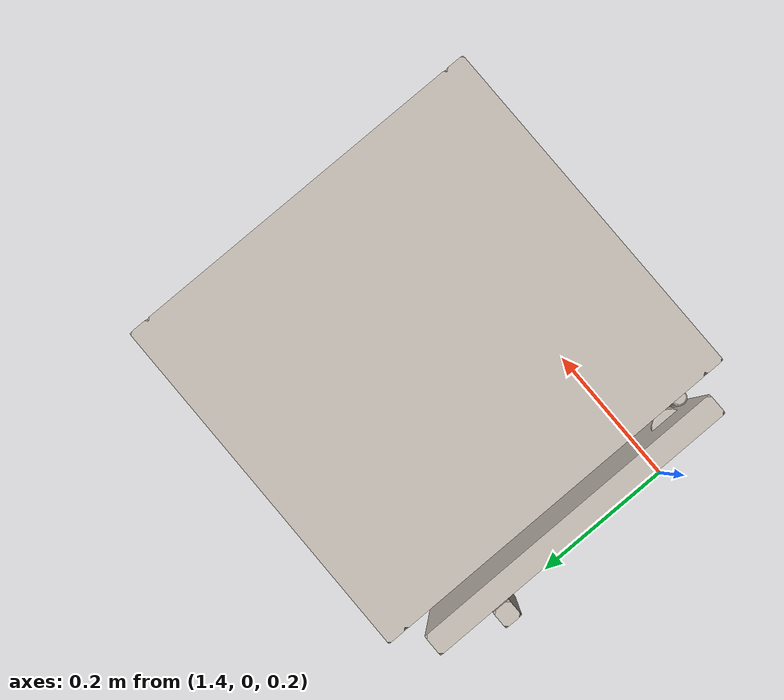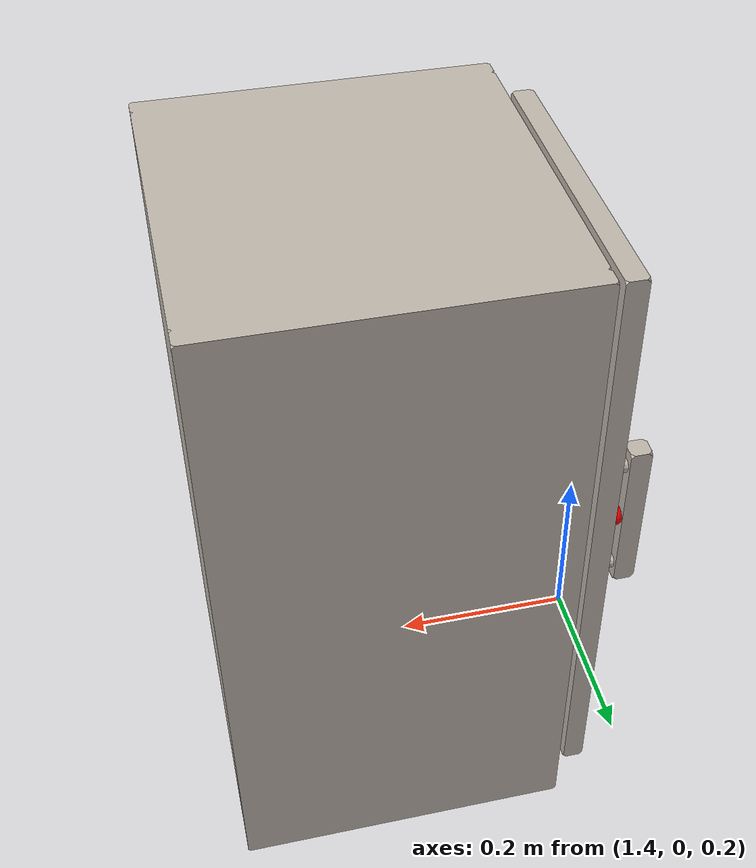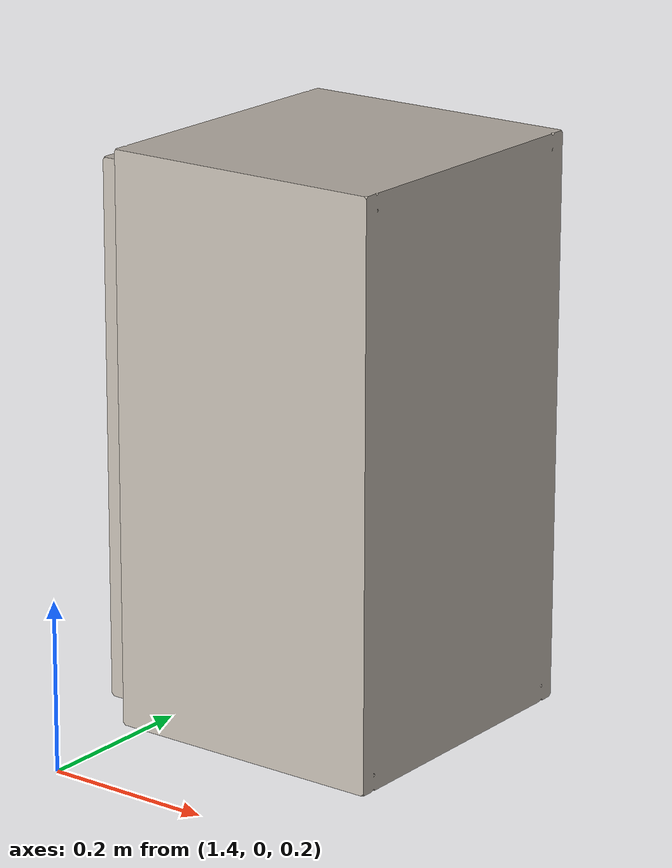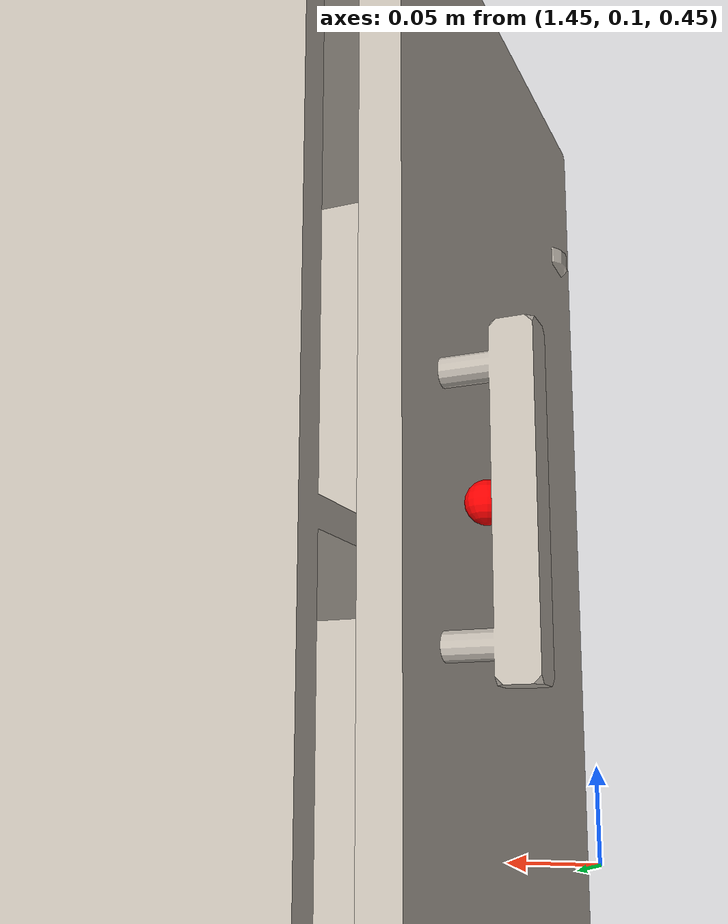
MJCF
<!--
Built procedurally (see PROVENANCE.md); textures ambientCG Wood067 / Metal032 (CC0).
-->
<?xml version="1.0"?>
<mujoco model="door">
  <compiler angle="radian" meshdir="assets" texturedir="assets"/>

  <asset>
    <texture name="walnut_tex" type="2d" file="walnut.png"/>
    <material name="walnut" texture="walnut_tex" specular="0.15" shininess="0.3" reflectance="0.0"/>
    <texture name="steel_tex" type="2d" file="steel.png"/>
    <material name="steel" texture="steel_tex" specular="0.7" shininess="0.6" reflectance="0.15"/>
    <mesh name="door_case" file="door_case.obj"/>
    <mesh name="door_leaf" file="door_leaf.obj"/>
    <mesh name="door_pull" file="door_pull.obj"/>
  </asset>

  <worldbody>
    <body name="door_base" pos="1.5 0 0.61" mocap="true">
      <geom name="door_case_visual" type="mesh" mesh="door_case" material="walnut" contype="0" conaffinity="0" group="2" mass="0"/>
      <geom name="door_body" type="box" pos="0.3300 0.1500 0.0000" size="0.0050 0.1550 0.3000" group="3" rgba="0.5 0.5 0.5 0.25" condim="3" friction="1 0.03 0.003" contype="2" conaffinity="1" solref="0.01 1"/>
      <geom name="door_case_hinge" type="box" pos="0.1750 -0.0140 0.0000" size="0.1600 0.0090 0.3180" group="3" rgba="0.5 0.5 0.5 0.25" condim="3" friction="1 0.03 0.003" contype="2" conaffinity="1" solref="0.01 1"/>
      <geom name="door_case_free" type="box" pos="0.1750 0.3140 0.0000" size="0.1600 0.0090 0.3180" group="3" rgba="0.5 0.5 0.5 0.25" condim="3" friction="1 0.03 0.003" contype="2" conaffinity="1" solref="0.01 1"/>
      <geom name="door_case_top" type="box" pos="0.1750 0.1500 0.3090" size="0.1600 0.1550 0.0090" group="3" rgba="0.5 0.5 0.5 0.25" condim="3" friction="1 0.03 0.003" contype="2" conaffinity="1" solref="0.01 1"/>
      <geom name="door_case_bottom" type="box" pos="0.1750 0.1500 -0.3090" size="0.1600 0.1550 0.0090" group="3" rgba="0.5 0.5 0.5 0.25" condim="3" friction="1 0.03 0.003" contype="2" conaffinity="1" solref="0.01 1"/>
      <!-- Base site at the handle location when the door is closed. -->
      <site name="base_site" pos="-0.04 0.25 0.0" size="0.01" rgba="0 0 1 0.3"/>

      <body name="handle" pos="0 0 0">
        <!-- Hinge on the leaf's y=0 edge; +theta swings the leaf toward the robot. -->
        <joint name="door_hinge" type="hinge" axis="0 0 1" pos="0 0 0"
               range="0 1.5708" limited="true" damping="0.05"/>
      <geom name="door_leaf_visual" type="mesh" mesh="door_leaf" material="walnut" contype="0" conaffinity="0" group="2" mass="0"/>
      <geom name="door_pull_visual" type="mesh" mesh="door_pull" material="steel" contype="0" conaffinity="0" group="2" mass="0"/>
      <geom name="door_panel" type="box" pos="-0.0100 0.1500 0.0000" size="0.0100 0.1500 0.3000" group="3" rgba="0.5 0.5 0.5 0.25" condim="3" friction="1 0.03 0.003" contype="2" conaffinity="1" solref="0.01 1" density="700.0"/>
      <geom name="handle" type="box" pos="-0.0550 0.2500 0.0000" size="0.0100 0.0100 0.0800" group="3" rgba="0.5 0.5 0.5 0.25" condim="3" friction="1 0.03 0.003" contype="2" conaffinity="1" solref="0.01 1" density="2700.0"/>
        <site name="object_site" pos="-0.04 0.25 0" size="0.01 0.01 0.01" rgba="1 0 0 1"/>
      </body>
    </body>
  </worldbody>
</mujoco>
